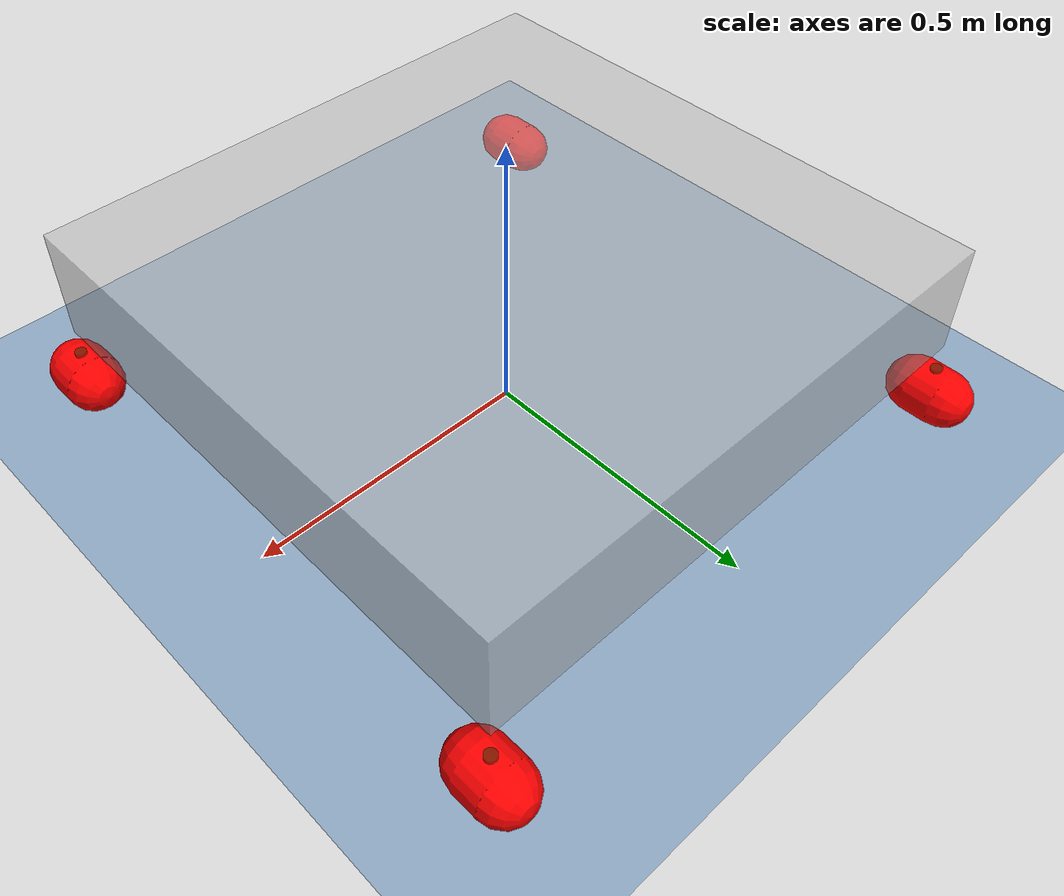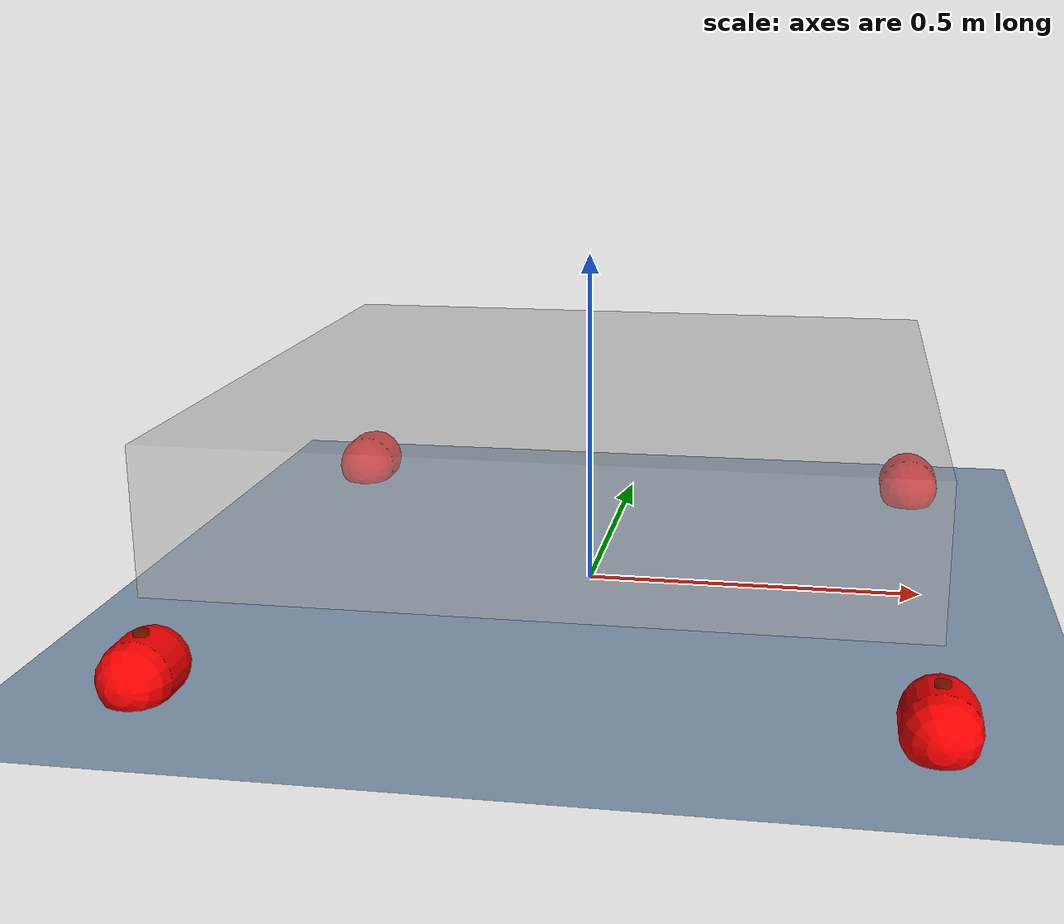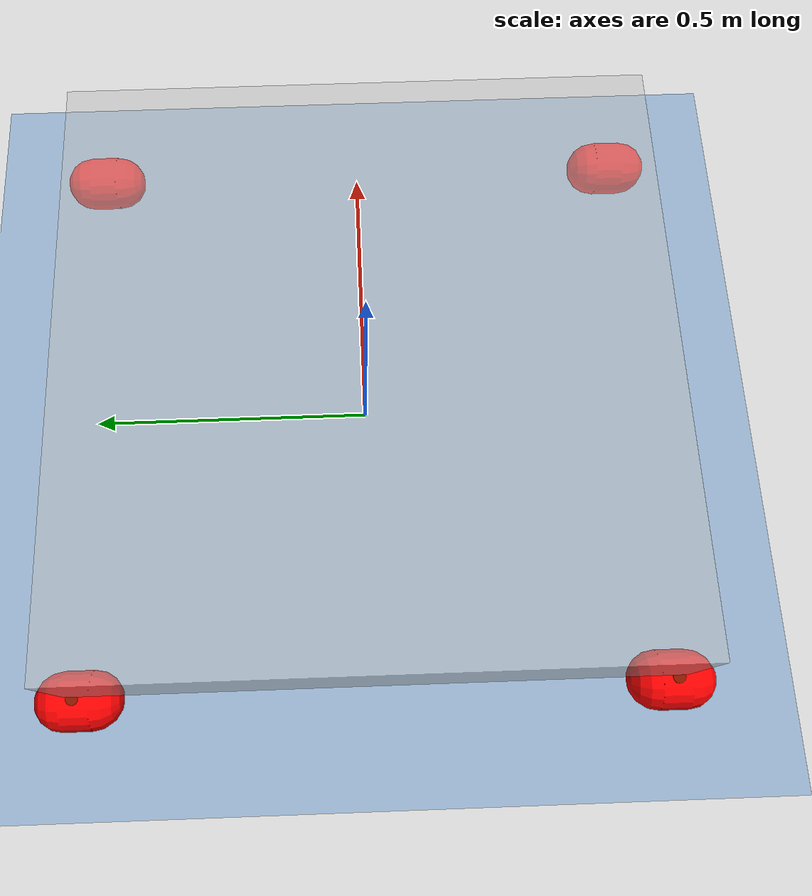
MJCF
<mujoco model='paddlecart'>
  <asset>
    <texture type="skybox" builtin="gradient" rgb1=".3 .5 .7" rgb2="0 0 0" width="32" height="512"/>
    <texture name="grid" type="2d" builtin="checker" width="512" height="512" rgb1=".4 .5 .6" rgb2=".7 .8 .9"/>
    <texture name="grid_centre" type="2d" builtin="checker" width="512" height="512" rgb1=".4 .5 .6" rgb2=".7 .8 .9"/>
    <material name="grid" texture="grid" texrepeat="2 2" texuniform="true" reflectance=".2"/>
    <material name="grid_centre" texture="grid_centre" texrepeat="2 2" texuniform="true" reflectance=".1"/>
  </asset>

  <option gravity="0 0 -9"/>

  <worldbody>
   <light name="light1" pos="1 1 10" dir="0.1 0.1 -1" diffuse=".8 .8 .8" specular=".2 .2 .2" ambient=".6 .5 .5"/>
    <camera name='fixed' pos='0 -2.5 0' quat='0.707 0.707 0 0'/>
    <geom name="floor" type="plane" size="3 3 .01" pos="-0.025 -0.295  0" material="grid"/>
    <geom name="centre" type="plane" size="0.5 0.5 .01" pos="0 0 0" material="grid"/>

    <body name="body" pos="0 0 0.225">
      <freejoint name="body_joint"/>
      <geom name="body_geom" type="box" size=".5 .5 .1" rgba="0.7 0.7 0.7 0.5" density="100"/>

      <body name="steer_FL_base" pos="0.5 0.5 -0.1">

        <body name="steer_FL" pos="0 0 -0.05">
          <joint name="slide_FL_joint" type="slide" axis="0 0 1" stiffness="10000" damping="100"/>
          <joint name="steer_FL_joint" pos="0 0 0" axis="0 0 1" damping="1" frictionloss="1"/>
          <geom name="steer_FL_geom" type="cylinder" size=".01 .005" rgba="0.1 0.2 0 0.5"/>
          <body name="drive_FL" pos="0 0 -0.05">
            <joint name="drive_FL_joint" pos="0 0 0" axis="0 1 0" damping="0.1" frictionloss="1"/>
            <geom name="drive_FL_geom" type="capsule" size=".05 .025" rgba="1 0 0 1" xyaxes="1 0 0 0 0 1"/>
          </body>
        </body>
      </body>

      <body name="steer_FR_base" pos="0.5 -0.5 -0.1">

        <body name="steer_FR" pos="0 0 -0.05">
          <joint name="slide_FR_joint" type="slide" axis="0 0 1" stiffness="10000" damping="100"/>
          <joint name="steer_FR_joint" pos="0 0 0" axis="0 0 1" damping="1" frictionloss="1"/>
          <geom name="steer_FR_geom" type="cylinder" size=".01 .005" rgba="0.1 0.2 0 0.5"/>
          <body name="drive_FR" pos="0 0 -0.05">
            <joint name="drive_FR_joint" pos="0 0 0" axis="0 1 0" damping="0.1" frictionloss="1"/>
            <geom name="drive_FR_geom" type="capsule" size=".05 .025" rgba="1 0 0 1" xyaxes="1 0 0 0 0 1"/>
          </body>
        </body>
      </body>

      <body name="steer_BL_base" pos="-0.5 0.5 -0.1">

        <body name="steer_BL" pos="0 0 -0.05">
          <joint name="slide_BL_joint" type="slide" axis="0 0 1" stiffness="10000"  damping="100"/>
          <joint name="steer_BL_joint" pos="0 0 0" axis="0 0 1" damping="1"  frictionloss="1"/>
          <geom name="steer_BL_geom" type="cylinder" size=".01 .005" rgba="0.1 0.2 0 0.5"/>
          <body name="drive_BL" pos="0 0 -0.05">
            <joint name="drive_BL_joint" pos="0 0 0" axis="0 1 0" damping="0.1"  frictionloss="1"/>
            <geom name="drive_BL_geom" type="capsule" size=".05 .025" rgba="1 0 0 1" xyaxes="1 0 0 0 0 1"/>
          </body>
        </body>
      </body>

      <body name="steer_BR_base" pos="-0.5 -0.5 -0.1">

        <body name="steer_BR" pos="0 0 -0.05">
          <joint name="slide_BR_joint" type="slide" axis="0 0 1" stiffness="10000" damping="100"/>
          <joint name="steer_BR_joint" pos="0 0 0" axis="0 0 1" damping="1"  frictionloss="1"/>
          <geom name="steer_BR_geom" type="cylinder" size=".01 .005" rgba="0.1 0.2 0 0.5"/>
          <body name="drive_BR" pos="0 0 -0.05">
            <joint name="drive_BR_joint" pos="0 0 0" axis="0 1 0" damping="0.1"  frictionloss="1"/>
            <geom name="drive_BR_geom" type="capsule" size=".05 .025" rgba="1 0 0 1" xyaxes="1 0 0 0 0 1"/>
          </body>
        </body>
      </body>

    </body>
  </worldbody>

  <actuator>
    <motor name="motor_FL_drive" joint="drive_FL_joint" ctrllimited="true" ctrlrange="-1 1" gear="5"/>
    <motor name="motor_FR_drive" joint="drive_FR_joint" ctrllimited="true" ctrlrange="-1 1" gear="5"/>
    <motor name="motor_BL_drive" joint="drive_BL_joint" ctrllimited="true" ctrlrange="-1 1" gear="5"/>
    <motor name="motor_BR_drive" joint="drive_BR_joint" ctrllimited="true" ctrlrange="-1 1" gear="5"/>
    <position name="pos_FL_steer" joint="steer_FL_joint" kp="10" ctrlrange="-3.14159 3.14159"/>
    <position name="pos_FR_steer" joint="steer_FR_joint" kp="10" ctrlrange="-3.14159 3.14159"/>
    <position name="pos_BL_steer" joint="steer_BL_joint" kp="10" ctrlrange="-3.14159 3.14159"/>
    <position name="pos_BR_steer" joint="steer_BR_joint" kp="10" ctrlrange="-3.14159 3.14159"/>
  </actuator>

  <sensor>
    <jointpos name="steerpos_FL" joint="steer_FL_joint"/> <!-- angles of wheel steer positions (4) -->
    <jointpos name="steerpos_FR" joint="steer_FR_joint"/>
    <jointpos name="steerpos_BL" joint="steer_BL_joint"/>
    <jointpos name="steerpos_BR" joint="steer_BR_joint"/>
    <jointvel name="steervel_FL" joint="steer_FL_joint"/> <!-- angular velocities of wheel steer positions (4) -->
    <jointvel name="steervel_FR" joint="steer_FR_joint"/>
    <jointvel name="steervel_BL" joint="steer_BL_joint"/>
    <jointvel name="steervel_BR" joint="steer_BR_joint"/>
    <jointvel name="drivevel_FL" joint="drive_FL_joint"/> <!-- wheel drive velocities (4) -->
    <jointvel name="drivevel_FR" joint="drive_FR_joint"/>
    <jointvel name="drivevel_BL" joint="drive_BL_joint"/>
    <jointvel name="drivevel_BR" joint="drive_BR_joint"/>
    <framepos name="body_pos" objtype="body" objname="body"/> <!-- body position (3) -->
    <framelinvel name="body_linvel" objtype="body" objname="body"/> <!-- body linear velocity (3) -->
    <frameangvel name="body_angvel" objtype="body" objname="body"/> <!-- body angular velocity (3) -->
    <framexaxis name="body_xaxis" objtype="body" objname="body"/> <!-- body x-axis orientation (3) -->
  </sensor>
</mujoco>
